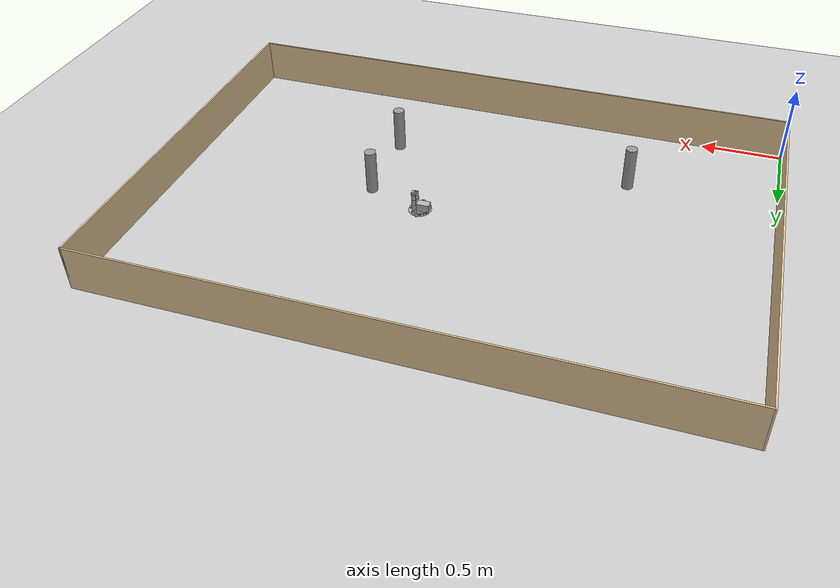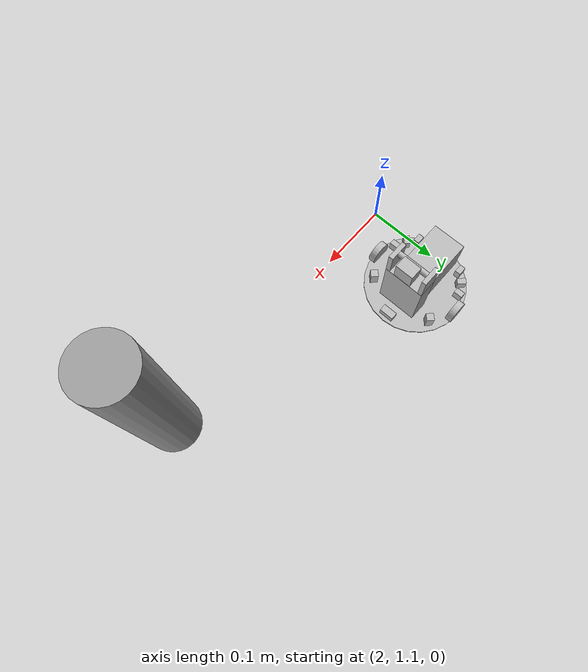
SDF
<?xml version="1.0" ?>
<sdf version="1.4">
  <world name="default">
    <scene>
      <ambient>0.5 0.5 0.5 1.0</ambient>
      <shadows>0</shadows>
    </scene>
    <include>
      <uri>model://ground_plane</uri>
    </include>
    <include>
      <uri>model://sun</uri>
    </include>
    <include>
      <uri>model://iti0201_robot</uri>
      <name>iti0201_robot</name>
      <pose>2.05 1.21 0 0 0 0</pose> <!-- this is the robot's starting position, if you know where it should be, you can change this -->
    </include>

    <model name='unit_cylinder1_1'>
      <link name='link'>
        <pose frame=''>0.9 0.60 0.14 0 -0 0</pose>
        <inertial>
          <mass>1</mass>
          <inertia>
            <ixx>0.145833</ixx>
            <ixy>0</ixy>
            <ixz>0</ixz>
            <iyy>0.145833</iyy>
            <iyz>0</iyz>
            <izz>0.125</izz>
          </inertia>
          <pose frame=''>0 0 0 0 -0 0</pose>
        </inertial>
        <self_collide>0</self_collide>
        <kinematic>0</kinematic>
        <gravity>1</gravity>
        <visual name='visual'>
          <geometry>
            <cylinder>
              <radius>0.035</radius>
              <length>0.28</length>
            </cylinder>
          </geometry>
          <material>
            <script>
              <name>Gazebo/Grey</name>
              <uri>file://media/materials/scripts/gazebo.material</uri>
            </script>
            <ambient>0.3 0.3 0.3 1</ambient>
            <diffuse>0.7 0.7 0.7 1</diffuse>
            <specular>0.01 0.01 0.01 1</specular>
            <emissive>0 0 0 1</emissive>
            <shader type='vertex'>
              <normal_map>__default__</normal_map>
            </shader>
          </material>
          <pose frame=''>0 0 0 0 -0 0</pose>
          <transparency>0</transparency>
          <cast_shadows>1</cast_shadows>
        </visual>
        <collision name='collision'>
          <laser_retro>0</laser_retro>
          <max_contacts>10</max_contacts>
          <pose frame=''>0 0 0 0 -0 0</pose>
          <geometry>
            <cylinder>
              <radius>0.035</radius>
              <length>0.28</length>
            </cylinder>
          </geometry>
          <surface>
            <friction>
              <ode>
                <mu>1</mu>
                <mu2>1</mu2>
                <fdir1>0 0 0</fdir1>
                <slip1>0</slip1>
                <slip2>0</slip2>
              </ode>
              <torsional>
                <coefficient>1</coefficient>
                <patch_radius>0</patch_radius>
                <surface_radius>0</surface_radius>
                <use_patch_radius>1</use_patch_radius>
                <ode>
                  <slip>0</slip>
                </ode>
              </torsional>
            </friction>
            <bounce>
              <restitution_coefficient>0</restitution_coefficient>
              <threshold>1e+06</threshold>
            </bounce>
            <contact>
              <collide_without_contact>0</collide_without_contact>
              <collide_without_contact_bitmask>1</collide_without_contact_bitmask>
              <collide_bitmask>1</collide_bitmask>
              <ode>
                <soft_cfm>0</soft_cfm>
                <soft_erp>0.2</soft_erp>
                <kp>1e+13</kp>
                <kd>1</kd>
                <max_vel>0.01</max_vel>
                <min_depth>0</min_depth>
              </ode>
              <bullet>
                <split_impulse>1</split_impulse>
                <split_impulse_penetration_threshold>-0.01</split_impulse_penetration_threshold>
                <soft_cfm>0</soft_cfm>
                <soft_erp>0.2</soft_erp>
                <kp>1e+13</kp>
                <kd>1</kd>
              </bullet>
            </contact>
          </surface>
        </collision>
      </link>
      <static>1</static>
      <allow_auto_disable>1</allow_auto_disable>
      <pose frame=''>0 0 0 0 -0 0</pose>
    </model>

    <model name='unit_cylinder1_2'>
      <link name='link'>
        <pose frame=''>2.40 0.60 0.14 0 -0 0</pose>
        <inertial>
          <mass>1</mass>
          <inertia>
            <ixx>0.145833</ixx>
            <ixy>0</ixy>
            <ixz>0</ixz>
            <iyy>0.145833</iyy>
            <iyz>0</iyz>
            <izz>0.125</izz>
          </inertia>
          <pose frame=''>0 0 0 0 -0 0</pose>
        </inertial>
        <self_collide>0</self_collide>
        <kinematic>0</kinematic>
        <gravity>1</gravity>
        <visual name='visual'>
          <geometry>
            <cylinder>
              <radius>0.035</radius>
              <length>0.28</length>
            </cylinder>
          </geometry>
          <material>
            <script>
              <name>Gazebo/Grey</name>
              <uri>file://media/materials/scripts/gazebo.material</uri>
            </script>
            <ambient>0.3 0.3 0.3 1</ambient>
            <diffuse>0.7 0.7 0.7 1</diffuse>
            <specular>0.01 0.01 0.01 1</specular>
            <emissive>0 0 0 1</emissive>
            <shader type='vertex'>
              <normal_map>__default__</normal_map>
            </shader>
          </material>
          <pose frame=''>0 0 0 0 -0 0</pose>
          <transparency>0</transparency>
          <cast_shadows>1</cast_shadows>
        </visual>
        <collision name='collision'>
          <laser_retro>0</laser_retro>
          <max_contacts>10</max_contacts>
          <pose frame=''>0 0 0 0 -0 0</pose>
          <geometry>
            <cylinder>
              <radius>0.035</radius>
              <length>0.28</length>
            </cylinder>
          </geometry>
          <surface>
            <friction>
              <ode>
                <mu>1</mu>
                <mu2>1</mu2>
                <fdir1>0 0 0</fdir1>
                <slip1>0</slip1>
                <slip2>0</slip2>
              </ode>
              <torsional>
                <coefficient>1</coefficient>
                <patch_radius>0</patch_radius>
                <surface_radius>0</surface_radius>
                <use_patch_radius>1</use_patch_radius>
                <ode>
                  <slip>0</slip>
                </ode>
              </torsional>
            </friction>
            <bounce>
              <restitution_coefficient>0</restitution_coefficient>
              <threshold>1e+06</threshold>
            </bounce>
            <contact>
              <collide_without_contact>0</collide_without_contact>
              <collide_without_contact_bitmask>1</collide_without_contact_bitmask>
              <collide_bitmask>1</collide_bitmask>
              <ode>
                <soft_cfm>0</soft_cfm>
                <soft_erp>0.2</soft_erp>
                <kp>1e+13</kp>
                <kd>1</kd>
                <max_vel>0.01</max_vel>
                <min_depth>0</min_depth>
              </ode>
              <bullet>
                <split_impulse>1</split_impulse>
                <split_impulse_penetration_threshold>-0.01</split_impulse_penetration_threshold>
                <soft_cfm>0</soft_cfm>
                <soft_erp>0.2</soft_erp>
                <kp>1e+13</kp>
                <kd>1</kd>
              </bullet>
            </contact>
          </surface>
        </collision>
      </link>
      <static>1</static>
      <allow_auto_disable>1</allow_auto_disable>
      <pose frame=''>0 0 0 0 -0 0</pose>
    </model>

    <model name='unit_cylinder1_3'>
      <link name='link'>
        <pose frame=''>2.40 1.10 0.14 0 -0 0</pose>
        <inertial>
          <mass>1</mass>
          <inertia>
            <ixx>0.145833</ixx>
            <ixy>0</ixy>
            <ixz>0</ixz>
            <iyy>0.145833</iyy>
            <iyz>0</iyz>
            <izz>0.125</izz>
          </inertia>
          <pose frame=''>0 0 0 0 -0 0</pose>
        </inertial>
        <self_collide>0</self_collide>
        <kinematic>0</kinematic>
        <gravity>1</gravity>
        <visual name='visual'>
          <geometry>
            <cylinder>
              <radius>0.035</radius>
              <length>0.28</length>
            </cylinder>
          </geometry>
          <material>
            <script>
              <name>Gazebo/Grey</name>
              <uri>file://media/materials/scripts/gazebo.material</uri>
            </script>
            <ambient>0.3 0.3 0.3 1</ambient>
            <diffuse>0.7 0.7 0.7 1</diffuse>
            <specular>0.01 0.01 0.01 1</specular>
            <emissive>0 0 0 1</emissive>
            <shader type='vertex'>
              <normal_map>__default__</normal_map>
            </shader>
          </material>
          <pose frame=''>0 0 0 0 -0 0</pose>
          <transparency>0</transparency>
          <cast_shadows>1</cast_shadows>
        </visual>
        <collision name='collision'>
          <laser_retro>0</laser_retro>
          <max_contacts>10</max_contacts>
          <pose frame=''>0 0 0 0 -0 0</pose>
          <geometry>
            <cylinder>
              <radius>0.035</radius>
              <length>0.28</length>
            </cylinder>
          </geometry>
          <surface>
            <friction>
              <ode>
                <mu>1</mu>
                <mu2>1</mu2>
                <fdir1>0 0 0</fdir1>
                <slip1>0</slip1>
                <slip2>0</slip2>
              </ode>
              <torsional>
                <coefficient>1</coefficient>
                <patch_radius>0</patch_radius>
                <surface_radius>0</surface_radius>
                <use_patch_radius>1</use_patch_radius>
                <ode>
                  <slip>0</slip>
                </ode>
              </torsional>
            </friction>
            <bounce>
              <restitution_coefficient>0</restitution_coefficient>
              <threshold>1e+06</threshold>
            </bounce>
            <contact>
              <collide_without_contact>0</collide_without_contact>
              <collide_without_contact_bitmask>1</collide_without_contact_bitmask>
              <collide_bitmask>1</collide_bitmask>
              <ode>
                <soft_cfm>0</soft_cfm>
                <soft_erp>0.2</soft_erp>
                <kp>1e+13</kp>
                <kd>1</kd>
                <max_vel>0.01</max_vel>
                <min_depth>0</min_depth>
              </ode>
              <bullet>
                <split_impulse>1</split_impulse>
                <split_impulse_penetration_threshold>-0.01</split_impulse_penetration_threshold>
                <soft_cfm>0</soft_cfm>
                <soft_erp>0.2</soft_erp>
                <kp>1e+13</kp>
                <kd>1</kd>
              </bullet>
            </contact>
          </surface>
        </collision>
      </link>
      <static>1</static>
      <allow_auto_disable>1</allow_auto_disable>
      <pose frame=''>0 0 0 0 -0 0</pose>
    </model>

    <model name='outer_box'>
    <pose frame=''>1.81 1.21 0 0 -0 0</pose>
    <link name='Wall_0'>
      <collision name='Wall_0_Collision'>
        <geometry>
          <box>
            <size>3.63 0.01 0.28</size>
          </box>
        </geometry>
        <pose frame=''>0 0 0.14 0 -0 0</pose>
      </collision>
      <visual name='Wall_0_Visual'>
        <pose frame=''>0 0 0.14 0 -0 0</pose>
        <geometry>
          <box>
            <size>3.63 0.01 0.28</size>
          </box>
        </geometry>
        <material>
          <script>
            <uri>file://media/materials/scripts/gazebo.material</uri>
            <name>Gazebo/Grey</name>
          </script>
          <ambient>0.921569 0.807843 0.615686 1</ambient>
        </material>
        <meta>
          <layer>0</layer>
        </meta>
      </visual>
      <pose frame=''>0 1.21 0 0 -0 0</pose>
    </link>
    <link name='Wall_2'>
      <collision name='Wall_2_Collision'>
        <geometry>
          <box>
            <size>2.43 0.01 0.28</size>
          </box>
        </geometry>
        <pose frame=''>0 0 0.14 0 -0 0</pose>
      </collision>
      <visual name='Wall_2_Visual'>
        <pose frame=''>0 0 0.14 0 -0 0</pose>
        <geometry>
          <box>
            <size>2.43 0.01 0.28</size>
          </box>
        </geometry>
        <material>
          <script>
            <uri>file://media/materials/scripts/gazebo.material</uri>
            <name>Gazebo/Grey</name>
          </script>
          <ambient>0.921569 0.807843 0.615686 1</ambient>
        </material>
        <meta>
          <layer>0</layer>
        </meta>
      </visual>
      <pose frame=''>1.81 0 0 0 0 -1.5708</pose>
    </link>
    <link name='Wall_4'>
      <collision name='Wall_4_Collision'>
        <geometry>
          <box>
            <size>3.63 0.01 0.28</size>
          </box>
        </geometry>
        <pose frame=''>0 0 0.14 0 -0 0</pose>
      </collision>
      <visual name='Wall_4_Visual'>
        <pose frame=''>0 0 0.14 0 -0 0</pose>
        <geometry>
          <box>
            <size>3.63 0.01 0.28</size>
          </box>
        </geometry>
        <material>
          <script>
            <uri>file://media/materials/scripts/gazebo.material</uri>
            <name>Gazebo/Grey</name>
          </script>
          <ambient>0.921569 0.807843 0.615686 1</ambient>
        </material>
        <meta>
          <layer>0</layer>
        </meta>
      </visual>
      <pose frame=''>0 -1.21 0 0 -0 3.14159</pose>
    </link>
    <link name='Wall_6'>
      <collision name='Wall_6_Collision'>
        <geometry>
          <box>
            <size>2.43 0.01 0.28</size>
          </box>
        </geometry>
        <pose frame=''>0 0 0.14 0 -0 0</pose>
      </collision>
      <visual name='Wall_6_Visual'>
        <pose frame=''>0 0 0.14 0 -0 0</pose>
        <geometry>
          <box>
            <size>2.43 0.01 0.28</size>
          </box>
        </geometry>
        <material>
          <script>
            <uri>file://media/materials/scripts/gazebo.material</uri>
            <name>Gazebo/Grey</name>
          </script>
          <ambient>0.921569 0.807843 0.615686 1</ambient>
        </material>
        <meta>
          <layer>0</layer>
        </meta>
      </visual>
      <pose frame=''>-1.81 0 0 0 -0 1.5708</pose>
    </link>
    <static>1</static>
  </model>

  </world>
</sdf>

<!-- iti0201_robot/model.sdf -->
<sdf version='1.4'>
  	<model name="iti0201_robot">
  		<static>false</static>

      <!-- LINK 1: Chassis, connect wheels and base to this. -->
      <link name="chassis">
        <pose>0 0 0.0152 0 0 0</pose>
      </link>

      <joint type="fixed" name="chassis_to_base">
        <pose>0 0 0 0 0 0</pose>
        <child>base</child>
        <parent>chassis</parent>
        <axis>
          <xyz>0 0 0</xyz>
        </axis>
      </joint>

      <!-- LINK 2: Base, contains caster wheels, base, brainbox and base for camera stand. -->
  		<link name='base'>
        <pose>0 0 .006 0 0 0</pose>

          <inertial>
            <mass>50</mass>
          </inertial>

          <collision name='base_collision'>
            <geometry>
              <cylinder>
                <radius>.069912</radius>
                <length>0.001591</length>
              </cylinder>
            </geometry>
          </collision>

          <visual name='base_visual'>
            <geometry>
              <cylinder>
                <radius>.069912</radius>
                <length>0.001591</length>
              </cylinder>
            </geometry>
          </visual>

          <collision name="brainbox_collision">
            <pose>-0.022 0 0.02641535 0 0 0</pose>
            <geometry>
              <box>
                <size>.077304 .0468221 .0512397</size>
              </box>
            </geometry>
          </collision>

          <visual name="brainbox_visual">
            <pose>-0.022 0 0.02641535 0 0 0</pose>
            <geometry>
              <box>
                <size>.077304 .0468221 .0512397</size>
              </box>
            </geometry>
          </visual>

          <collision name="camera_stand_collision">
            <pose>0.02940475 0 0.0402758 0 0 0</pose>
            <geometry>
              <box>
                <size>.0255021 .0553499 .0789606</size>
              </box>
            </geometry>
          </collision>

          <visual name="camera_stand_visual">
            <pose>0.02940475 0 0.0402758 0 0 0</pose>
            <geometry>
              <box>
                <size>.0255021 .0553499 .0789606</size>
              </box>
            </geometry>
          </visual>

          <collision name="camera_stand_right_wall_collision">
          <pose>0.02940475 -0.02467495 0.0970561 0 0 0</pose>
            <geometry>
              <box>
                <size>.0255021 .006 .0346</size>
              </box>
            </geometry>
          </collision>

          <visual name="camera_stand_right_wall_visual">
          <pose>0.02940475 -0.02467495 0.0970561 0 0 0</pose>
            <geometry>
              <box>
                <size>.0255021 .006 .0346</size>
              </box>
            </geometry>
          </visual>

          <collision name="camera_stand_left_wall_collision">
          <pose>0.02940475 0.02467495 0.0970561 0 0 0</pose>
            <geometry>
              <box>
                <size>.0255021 .006 .0346</size>
              </box>
            </geometry>
          </collision>

          <visual name="camera_stand_left_wall_visual">
          <pose>0.02940475 0.02467495 0.0970561 0 0 0</pose>
            <geometry>
              <box>
                <size>.0255021 .006 .0346</size>
              </box>
            </geometry>
          </visual>

          <collision name='front_caster_collision'>
            <pose>0.035 0 -0.001 0 0 0</pose>
            <geometry>
                <sphere>
                <radius>.004648</radius>
              </sphere>
            </geometry>

            <surface>
              <friction>
                <ode>
                  <mu>0</mu>
                  <mu2>0</mu2>
                  <slip1>1.0</slip1>
                  <slip2>1.0</slip2>
                </ode>
              </friction>
            </surface>
          </collision>

          <visual name='front_caster_visual'>
            <pose>0.035 0 -0.001 0 0 0</pose>
            <geometry>
              <sphere>
                <radius>.004648</radius>
              </sphere>
            </geometry>
          </visual>

          <collision name='rear_caster_collision'>
            <pose>-0.035 0 -0.001 0 0 0</pose>
            <geometry>
                <sphere>
                <radius>.004648</radius>
              </sphere>
            </geometry>

            <surface>
              <friction>
                <ode>
                  <mu>0</mu>
                  <mu2>0</mu2>
                  <slip1>1.0</slip1>
                  <slip2>1.0</slip2>
                </ode>
              </friction>
            </surface>
          </collision>

          <visual name='rear_caster_visual'>
            <pose>-0.035 0 -0.001 0 0 0</pose>
            <geometry>
              <sphere>
                <radius>.004648</radius>
              </sphere>
            </geometry>
          </visual>
      </link>

      <!-- LINKS 3-11: Infrared sensors. -->
      <link name="front_right_45deg_ir">
        <pose>0.0326151 -0.0470558 0.0167955 0 0 0.78535</pose>
        <collision name="collision">
          <geometry>
            <box>
              <size>.01 .01 .02</size>
            </box>
          </geometry>
        </collision>
        <visual name="visual">
          <geometry>
            <box>
              <size>.01 .01 .02</size>
            </box>
          </geometry>
        </visual>
      </link>

      <joint type="fixed" name="front_right_45deg_ir_to_base">
        <pose>0 0 0 0 0 0</pose>
        <child>front_right_45deg_ir</child>
        <parent>base</parent>
      </joint>

      <link name="front_middle_ir">
        <pose>0.059312 0 0.0117955 0 0 0</pose>
        <collision name="collision">
          <geometry>
            <box>
              <size>.01 .02 .01</size>
            </box>
          </geometry>
        </collision>
        <visual name="visual">
          <geometry>
            <box>
              <size>.01 .02 .01</size>
            </box>
          </geometry>
        </visual>
      </link>

      <joint type="fixed" name="front_middle_ir_to_base">
        <pose>0 0 0 0 0 0</pose>
        <child>front_middle_ir</child>
        <parent>base</parent>
      </joint>

      <link name="front_left_45deg_ir">
        <pose>0.0326151 0.0470558 0.0167955 0 0 0.78535</pose>
        <collision name="collision">
          <geometry>
            <box>
              <size>.01 .01 .02</size>
            </box>
          </geometry>
        </collision>
        <visual name="visual">
          <geometry>
            <box>
              <size>.01 .01 .02</size>
            </box>
          </geometry>
        </visual>
      </link>

      <joint type="fixed" name="front_left_45deg_ir_to_base">
        <pose>0 0 0 0 0 0</pose>
        <child>front_left_45deg_ir</child>
        <parent>base</parent>
      </joint>

      <link name="rear_right_90deg_ir">
        <pose>-0.0225688 -0.054749 0.014341 0 0 0</pose>
        <collision name="collision">
          <geometry>
            <box>
              <size>.008 .012 .0135</size>
            </box>
          </geometry>
        </collision>
        <visual name="visual">
          <geometry>
            <box>
              <size>.008 .012 .0135</size>
            </box>
          </geometry>
        </visual>
      </link>

      <joint type="fixed" name="rear_right_90deg_ir_to_base">
        <pose>0 0 0 0 0 0</pose>
        <child>rear_right_90deg_ir</child>
        <parent>base</parent>
      </joint>

      <link name="rear_right_45deg_ir">
        <pose>-0.037845 -0.046812 0.014341 0 0 -0.78535</pose>
        <collision name="collision">
          <geometry>
            <box>
              <size>.008 .012 .0135</size>
            </box>
          </geometry>
        </collision>
        <visual name="visual">
          <geometry>
            <box>
              <size>.008 .012 .0135</size>
            </box>
          </geometry>
        </visual>
      </link>

      <joint type="fixed" name="rear_right_45deg_ir_to_base">
        <pose>0 0 0 0 0 0</pose>
        <child>rear_right_45deg_ir</child>
        <parent>base</parent>
      </joint>

      <link name="rear_right_straight_ir">
        <pose>-0.0501109 -0.035473 0.014341 0 0 1.5707</pose>
        <collision name="collision">
          <geometry>
            <box>
              <size>.008 .012 .0135</size>
            </box>
          </geometry>
        </collision>
        <visual name="visual">
          <geometry>
            <box>
              <size>.008 .012 .0135</size>
            </box>
          </geometry>
        </visual>
      </link>

      <joint type="fixed" name="rear_right_straight_ir_to_base">
        <pose>0 0 0 0 0 0</pose>
        <child>rear_right_straight_ir</child>
        <parent>base</parent>
      </joint>

      <link name="rear_left_90deg_ir">
        <pose>-0.0225688 0.054749 0.014341 0 0 0</pose>
        <collision name="collision">
          <geometry>
            <box>
              <size>.008 .012 .0135</size>
            </box>
          </geometry>
        </collision>
        <visual name="visual">
          <geometry>
            <box>
              <size>.008 .012 .0135</size>
            </box>
          </geometry>
        </visual>
      </link>

      <joint type="fixed" name="rear_left_90deg_ir_to_base">
        <pose>0 0 0 0 0 0</pose>
        <child>rear_left_90deg_ir</child>
        <parent>base</parent>
      </joint>

      <link name="rear_left_45deg_ir">
        <pose>-0.037845 0.046812 0.014341 0 0 0.78535</pose>
        <collision name="collision">
          <geometry>
            <box>
              <size>.008 .012 .0135</size>
            </box>
          </geometry>
        </collision>
        <visual name="visual">
          <geometry>
            <box>
              <size>.008 .012 .0135</size>
            </box>
          </geometry>
        </visual>
      </link>

      <joint type="fixed" name="rear_left_45deg_ir_to_base">
        <pose>0 0 0 0 0 0</pose>
        <child>rear_left_45deg_ir</child>
        <parent>base</parent>
      </joint>

      <link name="rear_left_straight_ir">
        <pose>-0.0501109 0.035473 0.014341 0 0 1.5707</pose>
        <collision name="collision">
          <geometry>
            <box>
              <size>.008 .012 .0135</size>
            </box>
          </geometry>
        </collision>
        <visual name="visual">
          <geometry>
            <box>
              <size>.008 .012 .0135</size>
            </box>
          </geometry>
        </visual>
      </link>

      <joint type="fixed" name="rear_left_straight_ir_to_base">
        <pose>0 0 0 0 0 0</pose>
        <child>rear_left_straight_ir</child>
        <parent>base</parent>
      </joint>

      <!-- LINKS 12-17: Line following sensors. -->
      <link name="right_side_first_line_sensor_from_middle">
        <pose>-0.06289935 -0.005 0.0044545 0 0 0</pose>
        <collision name="collision">
          <geometry>
            <box>
              <size>.0025 .0035 .0015</size>
            </box>
          </geometry>
        </collision>
        <visual name="visual">
          <geometry>
            <box>
              <size>.0025 .0035 .0015</size>
            </box>
          </geometry>
        </visual>
      </link>

      <joint type="fixed" name="right_side_first_line_sensor_from_middle_to_base">
        <pose>0 0 0 0 0 0</pose>
        <child>right_side_first_line_sensor_from_middle</child>
        <parent>base</parent>
      </joint>

      <link name="left_side_first_line_sensor_from_middle">
        <pose>-0.06289935 0.005 0.0044545 0 0 0</pose>
        <collision name="collision">
          <geometry>
            <box>
              <size>.0025 .0035 .0015</size>
            </box>
          </geometry>
        </collision>
        <visual name="visual">
          <geometry>
            <box>
              <size>.0025 .0035 .0015</size>
            </box>
          </geometry>
        </visual>
      </link>

      <joint type="fixed" name="left_side_first_line_sensor_from_middle_to_base">
        <pose>0 0 0 0 0 0</pose>
        <child>left_side_first_line_sensor_from_middle</child>
        <parent>base</parent>
      </joint>

      <link name="right_side_second_line_sensor_from_middle">
        <pose>-0.06289935 -0.015 0.0044545 0 0 0</pose>
        <collision name="collision">
          <geometry>
            <box>
              <size>.0025 .0035 .0015</size>
            </box>
          </geometry>
        </collision>
        <visual name="visual">
          <geometry>
            <box>
              <size>.0025 .0035 .0015</size>
            </box>
          </geometry>
        </visual>
      </link>

      <joint type="fixed" name="right_side_second_line_sensor_from_middle_to_base">
        <pose>0 0 0 0 0 0</pose>
        <child>right_side_second_line_sensor_from_middle</child>
        <parent>base</parent>
      </joint>

      <link name="left_side_second_line_sensor_from_middle">
        <pose>-0.06289935 0.015 0.0044545 0 0 0</pose>
        <collision name="collision">
          <geometry>
            <box>
              <size>.0025 .0035 .0015</size>
            </box>
          </geometry>
        </collision>
        <visual name="visual">
          <geometry>
            <box>
              <size>.0025 .0035 .0015</size>
            </box>
          </geometry>
        </visual>
      </link>

      <joint type="fixed" name="left_side_second_line_sensor_from_middle_to_base">
        <pose>0 0 0 0 0 0</pose>
        <child>left_side_second_line_sensor_from_middle</child>
        <parent>base</parent>
      </joint>

      <link name="right_side_third_line_sensor_from_middle">
        <pose>-0.05410292 -0.035 0.0044545 0 0 0</pose>
        <collision name="collision">
          <geometry>
            <box>
              <size>.0025 .0035 .0015</size>
            </box>
          </geometry>
        </collision>
        <visual name="visual">
          <geometry>
            <box>
              <size>.0025 .0035 .0015</size>
            </box>
          </geometry>
        </visual>
      </link>

      <joint type="fixed" name="right_side_third_line_sensor_from_middle_to_base">
        <pose>0 0 0 0 0 0</pose>
        <child>right_side_third_line_sensor_from_middle</child>
        <parent>base</parent>
      </joint>

      <link name="left_side_third_line_sensor_from_middle">
        <pose>-0.05410292 0.035 0.0044545 0 0 0</pose>
        <collision name="collision">
          <geometry>
            <box>
              <size>.0025 .0035 .0015</size>
            </box>
          </geometry>
        </collision>
        <visual name="visual">
          <geometry>
            <box>
              <size>.0025 .0035 .0015</size>
            </box>
          </geometry>
        </visual>
      </link>

      <joint type="fixed" name="left_side_third_line_sensor_from_middle_to_base">
        <pose>0 0 0 0 0 0</pose>
        <child>left_side_third_line_sensor_from_middle</child>
        <parent>base</parent>
      </joint>

      <!-- LINKS 18-19: Camera. -->
      <link name="camera_stand_pole">
        <pose>0.02940475 0 0.1165341 0 1.5707 1.5707</pose>
        <collision name="collision">
          <geometry>
            <cylinder>
              <radius>.003822</radius>
              <length>.0433499</length>
            </cylinder>
          </geometry>
        </collision>
        <visual name="visual">
          <geometry>
            <cylinder>
              <radius>.003822</radius>
              <length>.0433499</length>
            </cylinder>
          </geometry>
        </visual>
      </link>

      <joint type="fixed" name="camera_stand_pole_to_base">
        <pose>0 0 0 0 0 0</pose>
        <child>camera_stand_pole</child>
        <parent>base</parent>
      </joint>

      <link name="camera">
        <pose>0.04140475 0 0.1168561 0 1.5707 0</pose>
        <collision name="collision">
          <geometry>
            <box>
              <size>.024 .024 .017</size>
            </box>
          </geometry>
        </collision>
        <visual name="visual">
          <geometry>
            <box>
              <size>.024 .024 .017</size>
            </box>
          </geometry>
        </visual>
      </link>

      <joint type="fixed" name="camera">
        <pose>0 0 0 0 0 0</pose>
        <child>camera</child>
        <parent>camera_stand_pole</parent>
      </joint>

      <!-- LINKS 20-21: Wheels. -->
     	<link name="right_wheel">
        <pose>0 -0.0655005 0.0152 0 1.5707 1.5707</pose>
        <collision name="collision">
          <geometry>
            <cylinder>
              <radius>.0152</radius>
              <length>.009</length>
            </cylinder>
          </geometry>

          <surface>
            <friction>
               <ode>
                  <!-- wheel friction coefficient -->
                  <mu>0.6</mu>
                  <!-- floor friction coefficient -->
                  <mu2>0.6</mu2>
               </ode>
            </friction>
          </surface>
        </collision>

        <inertial>
          <!-- don't know the real mass -->
          <mass>2</mass>
            <inertia>
              <!-- https://en.wikipedia.org/wiki/List_of_moments_of_inertia -->
              <ixx>0.00012902</ixx>
              <iyy>0.00012902</iyy>
              <izz>0.00023104</izz>
            </inertia>
        </inertial>

        <visual name="visual">
          <geometry>
            <cylinder>
              <radius>.0152</radius>
              <length>.009</length>
            </cylinder>
          </geometry>
        </visual>
    	</link>

      <joint type="revolute" name="right_wheel_hinge">
        <pose>0 0 -0.03 0 0 0</pose>
        <child>right_wheel</child>
        <parent>chassis</parent>
        <axis>
          <xyz>0 1 0</xyz>
        </axis>
      </joint>

    	<link name="left_wheel">
        <pose>0 0.0655005 0.0152 0 1.5707 1.5707</pose>
        <collision name="collision">
          <geometry>
            <cylinder>
              <radius>.0152</radius>
              <length>.009</length>
            </cylinder>
          </geometry>

          <surface>
            <friction>
               <ode>
                  <!-- wheel friction coefficient -->
                  <mu>0.6</mu>
                  <!-- floor friction coefficient -->
                  <mu2>0.6</mu2>
               </ode>
            </friction>
          </surface>
        </collision>

        <inertial>
          <!-- don't know the real mass -->
          <mass>2</mass>
            <inertia>
              <!-- https://en.wikipedia.org/wiki/List_of_moments_of_inertia -->
              <ixx>0.00012902</ixx>
              <iyy>0.00012902</iyy>
              <izz>0.00023104</izz>
            </inertia>
        </inertial>

        <visual name="visual">
          <geometry>
            <cylinder>
              <radius>.0152</radius>
              <length>.009</length>
            </cylinder>
          </geometry>
        </visual>
      </link>

      <joint type="revolute" name="left_wheel_hinge">
        <pose>0 0 0.03 0 0 0</pose>
        <child>left_wheel</child>
        <parent>chassis</parent>
        <axis>
          <xyz>0 1 0</xyz>
        </axis>
      </joint>
      <plugin name="wheel_plugin" filename="libwheel_plugin.so"/>
  </model>
</sdf>
